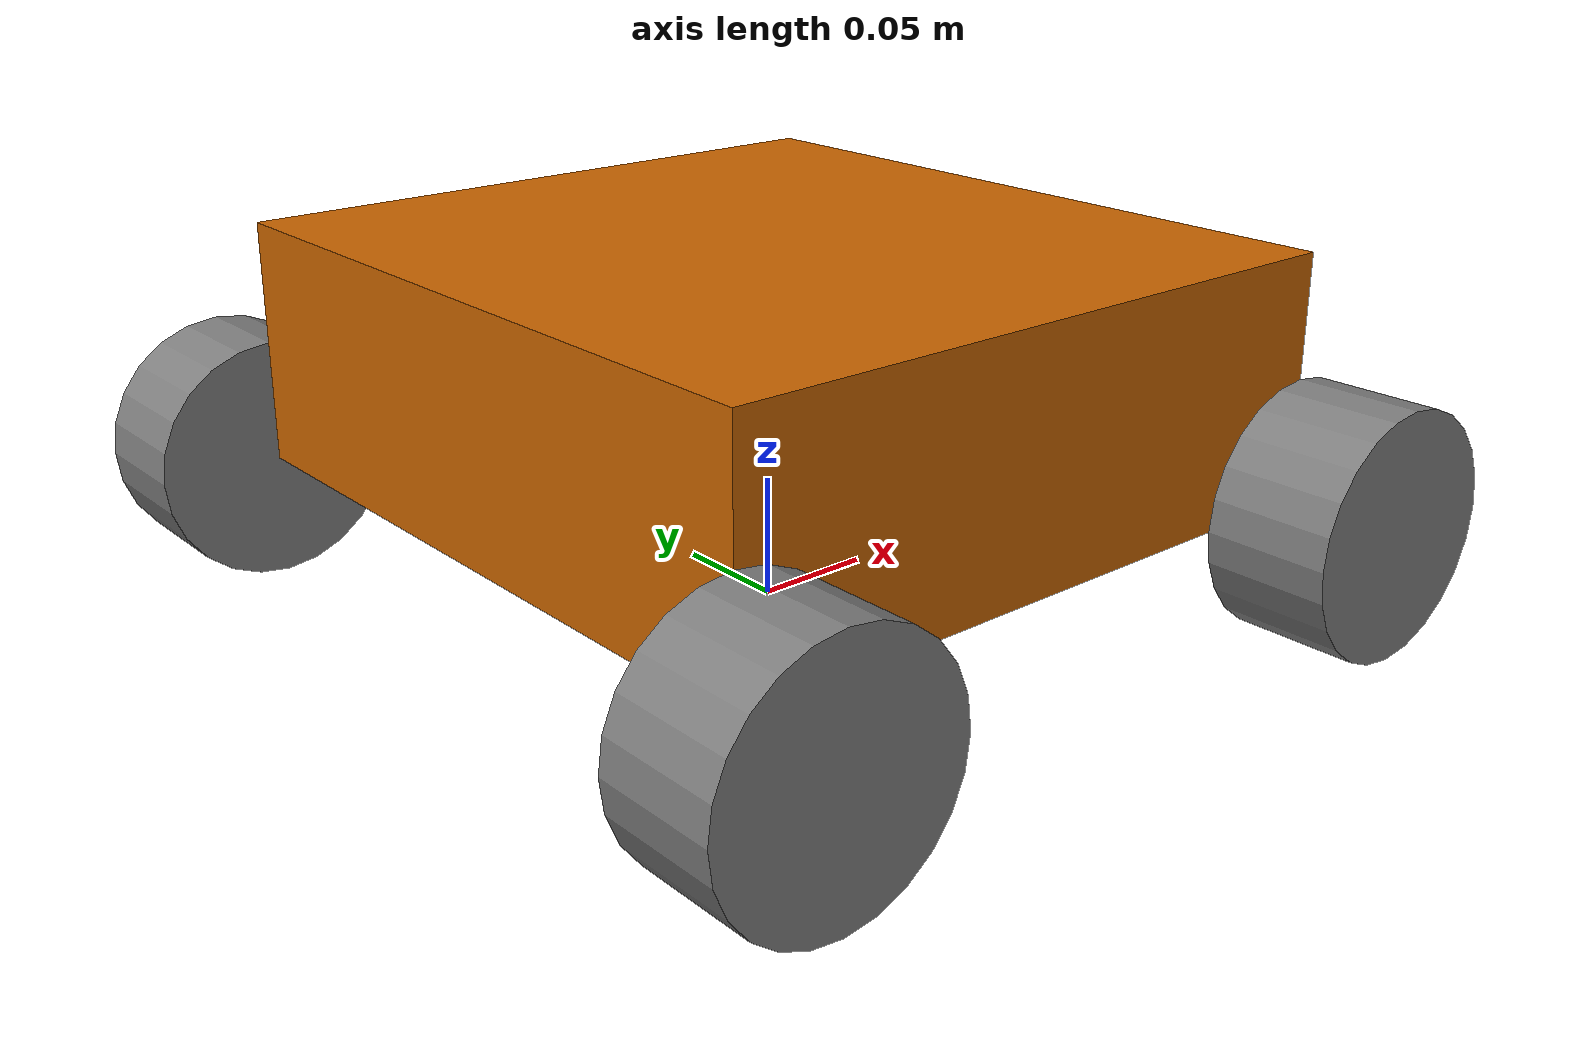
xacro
<?xml version="1.0"?>
<!-- This is the main urdf document, calling other xacro, including -->
<!-- rielbot_platform:  main platform -->
<!-- rielbot_gazebo:    gazebo simulation parameters for the main platform -->

<robot name="rielbot"
    xmlns:xacro="http://ros.org/wiki/xacro">

    <xacro:include filename="$(find rielbot_description)/urdf/rielbot_platform.xacro" />
    <xacro:include filename="$(find rielbot_description)/urdf/rielbot_gazebo.xacro" />
    <xacro:include filename="$(find rielbot_description)/urdf/rielbot_ros2_control.xacro" />

</robot>

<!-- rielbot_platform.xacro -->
<robot name="rielbot" xmlns:xacro="http://www.ros.org/wiki/xacro" xmlns:gz="http://gazebosim.org/schema">
  <material name="orange">
    <color rgba="0.8 0.4 0.0 1.0" />
  </material>
  <material name="black">
    <color rgba="0.5 0.5 0.5 1.0" />
  </material>
  <material name="white">
    <color rgba="1 1 1 1.0" />
  </material>

  <link name="base_footprint" />

  <joint name="base_joint" type="fixed">
    <parent link="base_footprint" />
    <child link="base_link" />
    <origin xyz="0 0 0.05" rpy="0 0 0" />
  </joint>

  <!-- Base Link -->
  <link name="base_link">
    <collision>
      <origin xyz="0 0 0.05" rpy="0 0 0" />
      <geometry>
         <box size=".28 .3 0.1" />
      </geometry>
    </collision>
    <visual>
      <origin xyz="0 0 0.05" rpy="0 0 0" />
      <geometry>
         <box size=".28 .3 0.1" />
      </geometry>
      <material name="orange" />
    </visual>
    <inertial>
      <origin xyz="0 0 0.5" rpy="0 0 0" />
      <mass value="1.5" />
      <inertia
        ixx="0.13"
        ixy="0.0"
        ixz="0.0"
        iyy="0.42"
        iyz="0.0"
        izz="0.48" />
    </inertial>
  </link>

  <!-- front left wheel -->
  <joint name="front_left_wheel_joint" type="continuous">
    <origin xyz="0.14 0.15 0" rpy="-${pi/2} 0 0" />
    <parent link="base_link" />
    <child link="front_left_wheel" />
    <axis xyz="0 0 1" />
    <dynamics damping="0.2" />
  </joint>

  <link name="front_left_wheel">
    <collision>
      <origin xyz="0 0 .025" rpy="0 0 0" />
      <geometry>
        <sphere radius="0.05" />
      </geometry>
    </collision>
    <visual>
      <origin xyz="0 0 .025" rpy="0 0 0" />
      <geometry>
        <cylinder radius="0.05" length="0.05" />
      </geometry>
      <material name="black" />
    </visual>
    <inertial>
       <origin xyz="0 0 .025" rpy="0 0 0" />
      <mass value="0.5" />
      <inertia ixx="0.0025"
        ixy="0.0"
        ixz="0.0"
        iyy="0.0025"
        iyz="0.0"
        izz="0.0020" />
    </inertial>
  </link>

  <!-- front right wheel -->
  <joint name="front_right_wheel_joint" type="continuous">
    <origin xyz="0.14 -0.15 0." rpy="-${pi/2} 0 0" />
    <parent link="base_link" />
    <child link="front_right_wheel" />
    <axis xyz="0 0 1" />
    <dynamics damping="0.2" />
  </joint>
  <link name="front_right_wheel">
    <collision>
      <origin xyz="0 0 -.025" rpy="0 0 0" />
      <geometry>
        <sphere radius="0.05" />
      </geometry>
    </collision>
    <visual>
      <origin xyz="0 0 -.025" rpy="0 0 0" />
      <geometry>
        <cylinder radius="0.05" length="0.05" />
      </geometry>
      <material name="black" />
    </visual>
    <inertial>
      <origin xyz="0 0 -.025" rpy="0 0 0" />
      <mass value=".5" />
      <inertia ixx="0.0025"
        ixy="0.0"
        ixz="0.0"
        iyy="0.0025"
        iyz="0.0"
        izz="0.0020" />
    </inertial>
  </link>

  <!-- rear left wheel -->
  <joint name="rear_left_wheel_joint" type="continuous">
    <origin xyz="-0.14 0.15 0." rpy="-${pi/2} 0 0" />
    <parent link="base_link" />
    <child link="rear_left_wheel" />
    <axis xyz="0 0 1" />
    <dynamics damping="0.2" />
  </joint>
  <link name="rear_left_wheel">
    <collision>
       <origin xyz="0 0 .025" rpy="0 0 0" />
      <geometry>
        <sphere radius="0.05" />
      </geometry>
    </collision>
    <visual>
       <origin xyz="0 0 .025" rpy="0 0 0" />
      <geometry>
        <cylinder radius="0.05" length="0.05" />
      </geometry>
      <material name="black" />
    </visual>
    <inertial>
       <origin xyz="0 0 .025" rpy="0 0 0" />
      <mass value="0.5" />
      <inertia ixx="0.0025"
        ixy="0.0"
        ixz="0.0"
        iyy="0.0025"
        iyz="0.0"
        izz="0.0020" />
    </inertial>
  </link>

  <!-- rear right wheel -->
  <joint name="rear_right_wheel_joint" type="continuous">
    <origin xyz="-0.14 -0.15 0." rpy="-${pi/2} 0 0" />
    <parent link="base_link" />
    <child link="rear_right_wheel" />
    <axis xyz="0 0 1" />
    <dynamics damping="0.2" />
  </joint>
  <link name="rear_right_wheel">
    <collision>
       <origin xyz="0 0 -.025" rpy="0 0 0" />
      <geometry>
        <sphere radius="0.05" />
      </geometry>
    </collision>
    <visual>
       <origin xyz="0 0 -.025" rpy="0 0 0" />
      <geometry>
        <cylinder radius="0.05" length="0.05" />
      </geometry>
      <material name="black" />
    </visual>
    <inertial>
       <origin xyz="0 0 -.025" rpy="0 0 0" />
      <mass value="0.5" />
      <inertia ixx="0.0025"
        ixy="0.0"
        ixz="0.0"
        iyy="0.0025"
        iyz="0.0"
        izz="0.0020" />
    </inertial>
  </link>
</robot>
